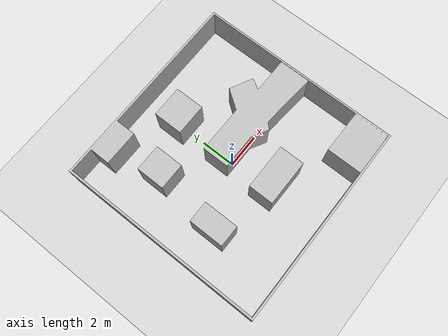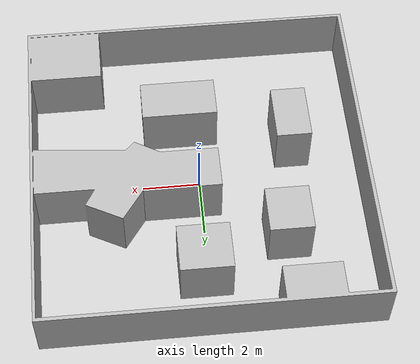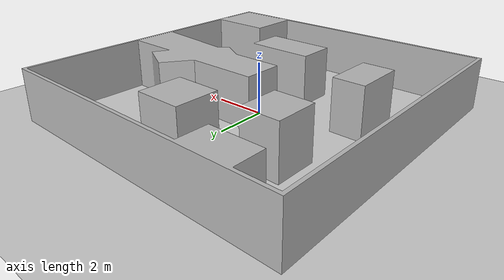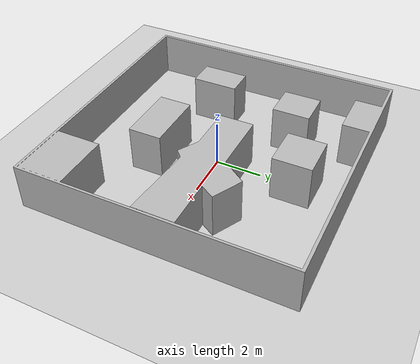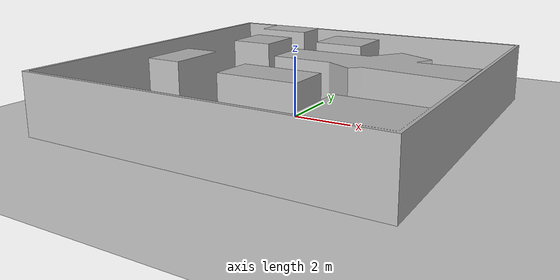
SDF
<?xml version="1.0" ?>
<sdf version="1.4">
	<world name="default">
    		<!-- Simple world  model -->
		<include>
			<uri>model://simple_world</uri>
			<name>simple_world</name>
			<pose>0 0 0 0 0 0</pose>
		</include>

		<include>
			<uri>model://sun</uri>
		</include>

		<!-- A ground plane -->
		<include>
			<uri>model://ground_plane</uri>
		</include>

		<scene>
			<grid>false</grid>
		</scene>
	</world>
</sdf>

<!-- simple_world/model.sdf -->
<sdf version='1.4'>

  <model name='simple_world'>
    <pose>30 20 0 0 0 0</pose>
    <static>true</static>
    <link name="wall">
      <visual name="wall_visual">
        <geometry>
          <mesh><uri>model://simple_world/meshes/walls.dae</uri></mesh>
        </geometry>
      </visual>
      <collision name="wall_collision">
        <geometry>
          <mesh><uri>model://simple_world/meshes/walls.dae</uri></mesh>
        </geometry>
      </collision>
    </link>
  </model>
</sdf>
